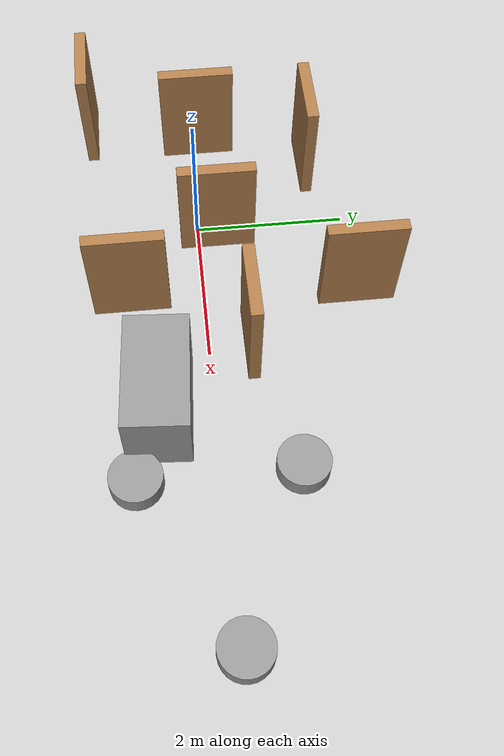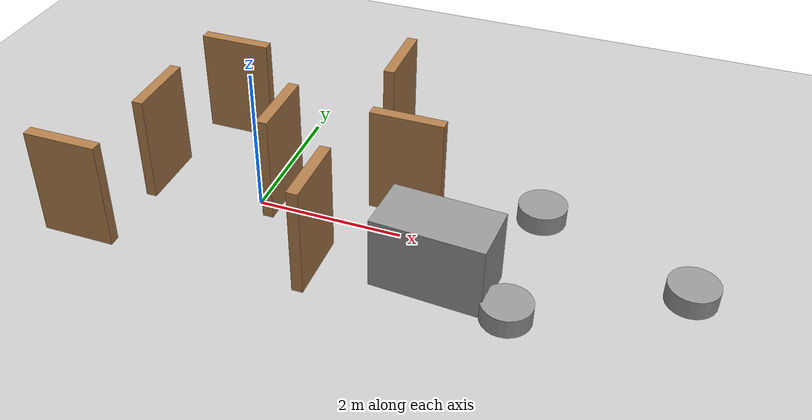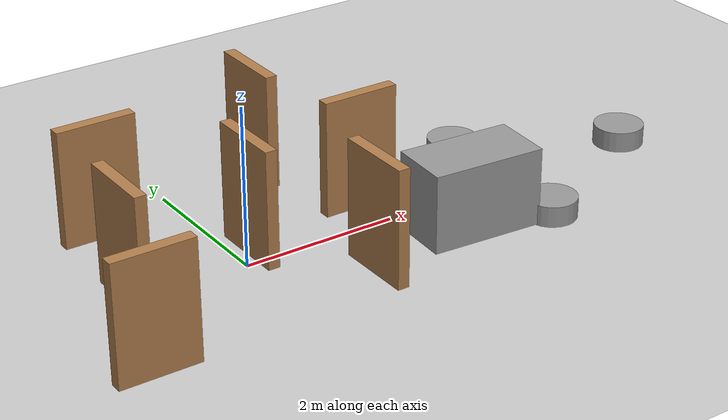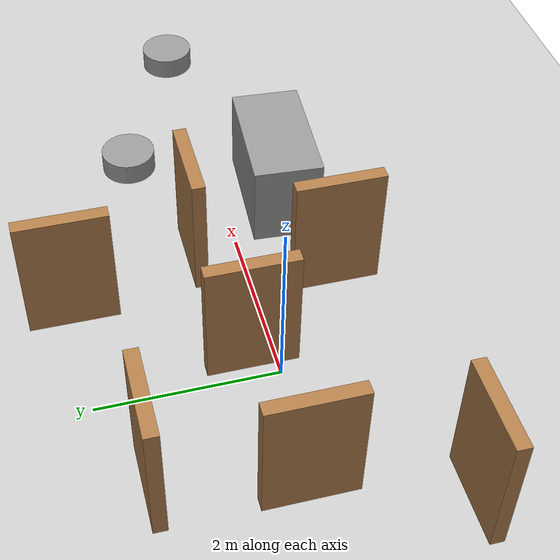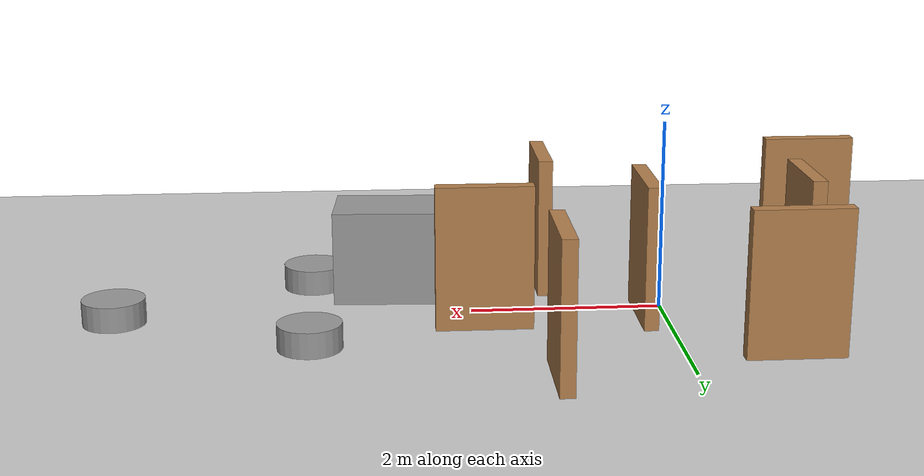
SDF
<sdf version="1.6">
 <world name="default">
  <model name="ground_plane">
   <static>1</static>
   <link name="link">
    <collision name="collision">
     <geometry><plane><normal>0 0 1</normal><size>100 100</size></plane></geometry>
     <surface><friction><ode><mu>100</mu><mu2>50</mu2></ode></friction></surface>
    </collision>
    <visual name="visual">
     <cast_shadows>0</cast_shadows>
     <geometry><plane><normal>0 0 1</normal><size>100 100</size></plane></geometry>
     <material>
      <script><uri>file://media/materials/scripts/gazebo.material</uri><name>Gazebo/Grey</name></script>
     </material>
    </visual>
   </link>
  </model>
  <model name="V">
   <pose>1.90355 0.535293 0 0 -0 0</pose>
   <link name="Wall_48">
    <collision name="Wall_48_Collision">
     <geometry><box><size>1 0.15 1.5</size></box></geometry>
     <pose>0 0 0.75 0 -0 0</pose>
    </collision>
    <visual name="Wall_48_Visual">
     <pose>0 0 0.75 0 -0 0</pose>
     <geometry><box><size>1 0.15 1.5</size></box></geometry>
     <material>
      <script><uri>file://media/materials/scripts/gazebo.material</uri><name>Gazebo/Wood</name></script>
      <ambient>1 1 1 1</ambient>
     </material>
     <meta><layer>0</layer></meta>
    </visual>
   </link>
   <static>1</static>
  </model>
  <model name="V_0">
   <pose>-1.92059 -1.40453 0 0 -0 0</pose>
   <link name="Wall_48">
    <collision name="Wall_48_Collision">
     <geometry><box><size>1 0.15 1.5</size></box></geometry>
     <pose>0 0 0.75 0 -0 0</pose>
    </collision>
    <visual name="Wall_48_Visual">
     <pose>0 0 0.75 0 -0 0</pose>
     <geometry><box><size>1 0.15 1.5</size></box></geometry>
     <material>
      <script><uri>file://media/materials/scripts/gazebo.material</uri><name>Gazebo/Wood</name></script>
      <ambient>1 1 1 1</ambient>
     </material>
     <meta><layer>0</layer></meta>
    </visual>
   </link>
   <static>1</static>
  </model>
  <model name="V_1">
   <pose>-1.04403 1.59361 0 0 -0 0</pose>
   <link name="Wall_48">
    <collision name="Wall_48_Collision">
     <geometry><box><size>1 0.15 1.5</size></box></geometry>
     <pose>0 0 0.75 0 -0 0</pose>
    </collision>
    <visual name="Wall_48_Visual">
     <pose>0 0 0.75 0 -0 0</pose>
     <geometry><box><size>1 0.15 1.5</size></box></geometry>
     <material>
      <script><uri>file://media/materials/scripts/gazebo.material</uri><name>Gazebo/Wood</name></script>
      <ambient>1 1 1 1</ambient>
     </material>
     <meta><layer>0</layer></meta>
    </visual>
   </link>
   <static>1</static>
  </model>
  <model name="HO_0">
   <pose>0.218896 0.2622 0 0 -0 0</pose>
   <link name="Wall_54">
    <collision name="Wall_54_Collision">
     <geometry><box><size>1 0.15 1.5</size></box></geometry>
     <pose>0 0 0.75 0 -0 0</pose>
    </collision>
    <visual name="Wall_54_Visual">
     <pose>0 0 0.75 0 -0 0</pose>
     <geometry><box><size>1 0.15 1.5</size></box></geometry>
     <material>
      <script><uri>file://media/materials/scripts/gazebo.material</uri><name>Gazebo/Wood</name></script>
      <ambient>1 1 1 1</ambient>
     </material>
     <meta><layer>0</layer></meta>
    </visual>
    <pose>0 0 0 0 -0 -1.5708</pose>
   </link>
   <static>1</static>
  </model>
  <model name="HO_2">
   <pose>-1.48457 0.125075 0 0 -0 0</pose>
   <link name="Wall_54">
    <collision name="Wall_54_Collision">
     <geometry><box><size>1 0.15 1.5</size></box></geometry>
     <pose>0 0 0.75 0 -0 0</pose>
    </collision>
    <visual name="Wall_54_Visual">
     <pose>0 0 0.75 0 -0 0</pose>
     <geometry><box><size>1 0.15 1.5</size></box></geometry>
     <material>
      <script><uri>file://media/materials/scripts/gazebo.material</uri><name>Gazebo/Wood</name></script>
      <ambient>1 1 1 1</ambient>
     </material>
     <meta><layer>0</layer></meta>
    </visual>
    <pose>0 0 0 0 -0 -1.5708</pose>
   </link>
   <static>1</static>
  </model>
  <model name="HO_3">
   <pose>1.1783 -0.941978 0 0 -0 0</pose>
   <link name="Wall_54">
    <collision name="Wall_54_Collision">
     <geometry><box><size>1 0.15 1.5</size></box></geometry>
     <pose>0 0 0.75 0 -0 0</pose>
    </collision>
    <visual name="Wall_54_Visual">
     <pose>0 0 0.75 0 -0 0</pose>
     <geometry><box><size>1 0.15 1.5</size></box></geometry>
     <material>
      <script><uri>file://media/materials/scripts/gazebo.material</uri><name>Gazebo/Wood</name></script>
      <ambient>1 1 1 1</ambient>
     </material>
     <meta><layer>0</layer></meta>
    </visual>
    <pose>0 0 0 0 -0 -1.5708</pose>
   </link>
   <static>1</static>
  </model>
  <model name="HO_4">
   <pose>1.29577 1.99997 0 0 -0 0</pose>
   <link name="Wall_54">
    <collision name="Wall_54_Collision">
     <geometry><box><size>1 0.15 1.5</size></box></geometry>
     <pose>0 0 0.75 0 -0 0</pose>
    </collision>
    <visual name="Wall_54_Visual">
     <pose>0 0 0.75 0 -0 0</pose>
     <geometry><box><size>1 0.15 1.5</size></box></geometry>
     <material>
      <script><uri>file://media/materials/scripts/gazebo.material</uri><name>Gazebo/Wood</name></script>
      <ambient>1 1 1 1</ambient>
     </material>
     <meta><layer>0</layer></meta>
    </visual>
    <pose>0 0 0 0 -0 -1.5708</pose>
   </link>
   <static>1</static>
  </model>
  <model name="c0">
   <link name="link">
    <inertial>
     <mass>1</mass>
     <inertia><ixx>0.145833</ixx><ixy>0</ixy><ixz>0</ixz><iyy>0.145833</iyy><iyz>0</iyz><izz>0.125</izz></inertia>
    </inertial>
    <visual name="visual">
     <geometry><cylinder><radius>0.326555</radius><length>0.51474</length></cylinder></geometry>
     <material>
      <script><name>Gazebo/Grey</name><uri>file://media/materials/scripts/gazebo.material</uri></script>
     </material>
    </visual>
    <collision name="collision">
     <geometry><cylinder><radius>0.326555</radius><length>0.51474</length></cylinder></geometry>
     <surface>
      <friction>
       <ode><mu>1</mu><mu2>1</mu2><fdir1>0 0 0</fdir1><slip1>0</slip1><slip2>0</slip2></ode>
       <torsional>
        <coefficient>1</coefficient>
        <patch_radius>0</patch_radius>
        <surface_radius>0</surface_radius>
        <use_patch_radius>1</use_patch_radius>
        <ode><slip>0</slip></ode>
       </torsional>
      </friction>
      <bounce><restitution_coefficient>0</restitution_coefficient><threshold>1e+06</threshold></bounce>
      <contact>
       <collide_without_contact>0</collide_without_contact>
       <collide_without_contact_bitmask>1</collide_without_contact_bitmask>
       <collide_bitmask>1</collide_bitmask>
       <ode>
        <soft_cfm>0</soft_cfm>
        <soft_erp>0.2</soft_erp>
        <kp>1e+13</kp>
        <kd>1</kd>
        <max_vel>0.01</max_vel>
        <min_depth>0</min_depth>
       </ode>
       <bullet>
        <split_impulse>1</split_impulse>
        <split_impulse_penetration_threshold>-0.01</split_impulse_penetration_threshold>
        <soft_cfm>0</soft_cfm>
        <soft_erp>0.2</soft_erp>
        <kp>1e+13</kp>
        <kd>1</kd>
       </bullet>
      </contact>
     </surface>
    </collision>
   </link>
   <static>1</static>
   <pose>5.70012 0.083019 0 0 -0 0</pose>
  </model>
  <model name="c0_0">
   <link name="link">
    <inertial>
     <mass>1</mass>
     <inertia><ixx>0.145833</ixx><ixy>0</ixy><ixz>0</ixz><iyy>0.145833</iyy><iyz>0</iyz><izz>0.125</izz></inertia>
    </inertial>
    <visual name="visual">
     <geometry><cylinder><radius>0.326555</radius><length>0.51474</length></cylinder></geometry>
     <material>
      <script><name>Gazebo/Grey</name><uri>file://media/materials/scripts/gazebo.material</uri></script>
     </material>
    </visual>
    <collision name="collision">
     <geometry><cylinder><radius>0.326555</radius><length>0.51474</length></cylinder></geometry>
     <surface>
      <friction>
       <ode><mu>1</mu><mu2>1</mu2><fdir1>0 0 0</fdir1><slip1>0</slip1><slip2>0</slip2></ode>
       <torsional>
        <coefficient>1</coefficient>
        <patch_radius>0</patch_radius>
        <surface_radius>0</surface_radius>
        <use_patch_radius>1</use_patch_radius>
        <ode><slip>0</slip></ode>
       </torsional>
      </friction>
      <bounce><restitution_coefficient>0</restitution_coefficient><threshold>1e+06</threshold></bounce>
      <contact>
       <collide_without_contact>0</collide_without_contact>
       <collide_without_contact_bitmask>1</collide_without_contact_bitmask>
       <collide_bitmask>1</collide_bitmask>
       <ode>
        <soft_cfm>0</soft_cfm>
        <soft_erp>0.2</soft_erp>
        <kp>1e+13</kp>
        <kd>1</kd>
        <max_vel>0.01</max_vel>
        <min_depth>0</min_depth>
       </ode>
       <bullet>
        <split_impulse>1</split_impulse>
        <split_impulse_penetration_threshold>-0.01</split_impulse_penetration_threshold>
        <soft_cfm>0</soft_cfm>
        <soft_erp>0.2</soft_erp>
        <kp>1e+13</kp>
        <kd>1</kd>
       </bullet>
      </contact>
     </surface>
    </collision>
   </link>
   <static>1</static>
   <pose>3.67678 -0.998554 0 0 -0 0</pose>
  </model>
  <model name="c0_2">
   <link name="link">
    <inertial>
     <mass>1</mass>
     <inertia><ixx>0.145833</ixx><ixy>0</ixy><ixz>0</ixz><iyy>0.145833</iyy><iyz>0</iyz><izz>0.125</izz></inertia>
    </inertial>
    <visual name="visual">
     <geometry><cylinder><radius>0.326555</radius><length>0.51474</length></cylinder></geometry>
     <material>
      <script><name>Gazebo/Grey</name><uri>file://media/materials/scripts/gazebo.material</uri></script>
     </material>
    </visual>
    <collision name="collision">
     <geometry><cylinder><radius>0.326555</radius><length>0.51474</length></cylinder></geometry>
     <surface>
      <friction>
       <ode><mu>1</mu><mu2>1</mu2><fdir1>0 0 0</fdir1><slip1>0</slip1><slip2>0</slip2></ode>
       <torsional>
        <coefficient>1</coefficient>
        <patch_radius>0</patch_radius>
        <surface_radius>0</surface_radius>
        <use_patch_radius>1</use_patch_radius>
        <ode><slip>0</slip></ode>
       </torsional>
      </friction>
      <bounce><restitution_coefficient>0</restitution_coefficient><threshold>1e+06</threshold></bounce>
      <contact>
       <collide_without_contact>0</collide_without_contact>
       <collide_without_contact_bitmask>1</collide_without_contact_bitmask>
       <collide_bitmask>1</collide_bitmask>
       <ode>
        <soft_cfm>0</soft_cfm>
        <soft_erp>0.2</soft_erp>
        <kp>1e+13</kp>
        <kd>1</kd>
        <max_vel>0.01</max_vel>
        <min_depth>0</min_depth>
       </ode>
       <bullet>
        <split_impulse>1</split_impulse>
        <split_impulse_penetration_threshold>-0.01</split_impulse_penetration_threshold>
        <soft_cfm>0</soft_cfm>
        <soft_erp>0.2</soft_erp>
        <kp>1e+13</kp>
        <kd>1</kd>
       </bullet>
      </contact>
     </surface>
    </collision>
   </link>
   <static>1</static>
   <pose>3.66158 0.979241 0 0 -0 0</pose>
  </model>
  <model name="unit_box_0">
   <pose>2.69634 -0.666185 0.5 0 0 -0.06417</pose>
   <link name="link">
    <inertial>
     <mass>1</mass>
     <inertia>
      <ixx>0.166667</ixx>
      <ixy>0</ixy>
      <ixz>0</ixz>
      <iyy>0.166667</iyy>
      <iyz>0</iyz>
      <izz>0.166667</izz>
     </inertia>
    </inertial>
    <collision name="collision"><geometry><box><size>1.46313 0.798829 1</size></box></geometry></collision>
    <visual name="visual">
     <geometry><box><size>1.46313 0.798829 1</size></box></geometry>
     <material>
      <script><name>Gazebo/Grey</name><uri>file://media/materials/scripts/gazebo.material</uri></script>
     </material>
    </visual>
   </link>
  </model>
 </world>
</sdf>
